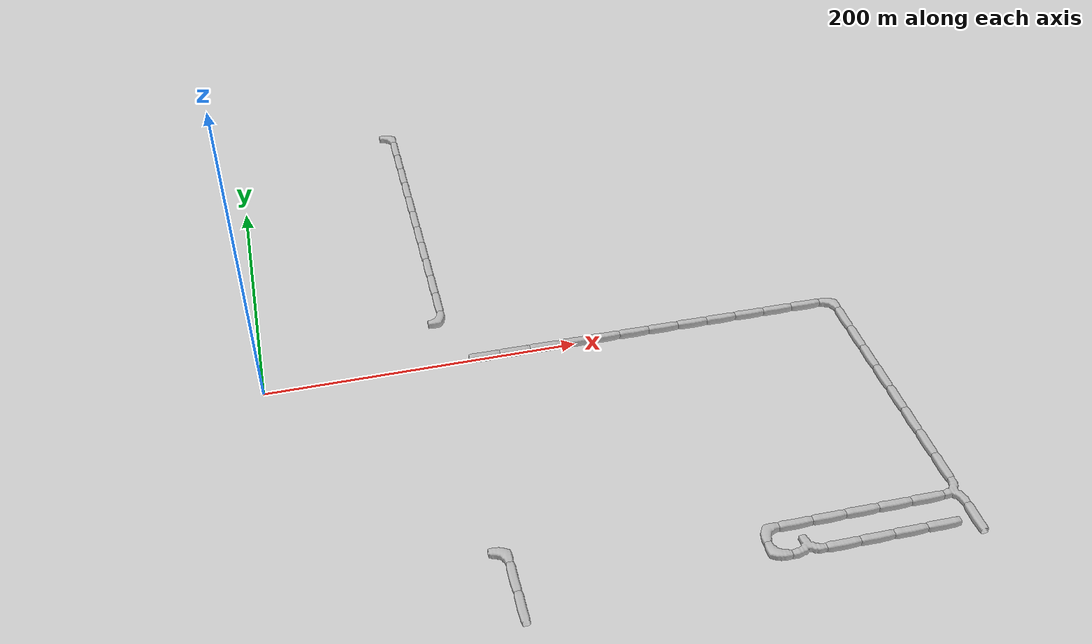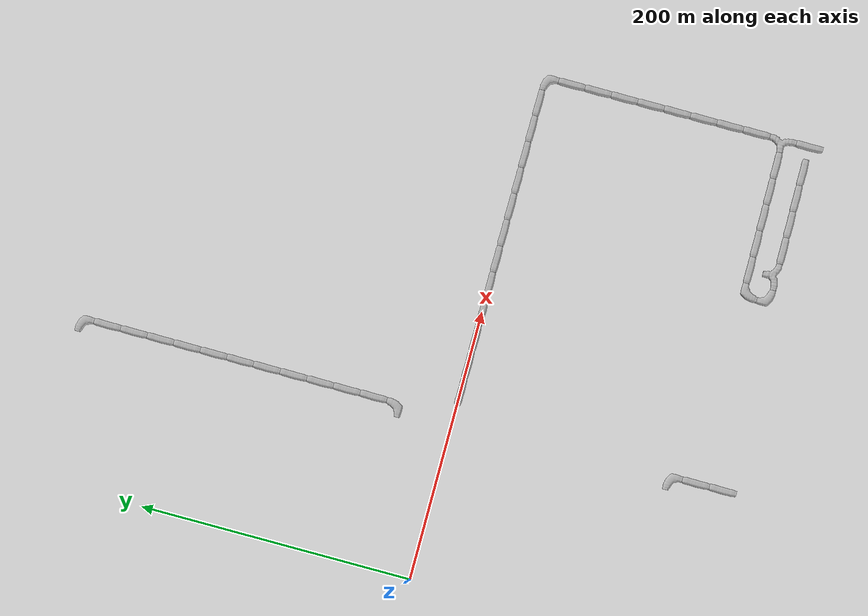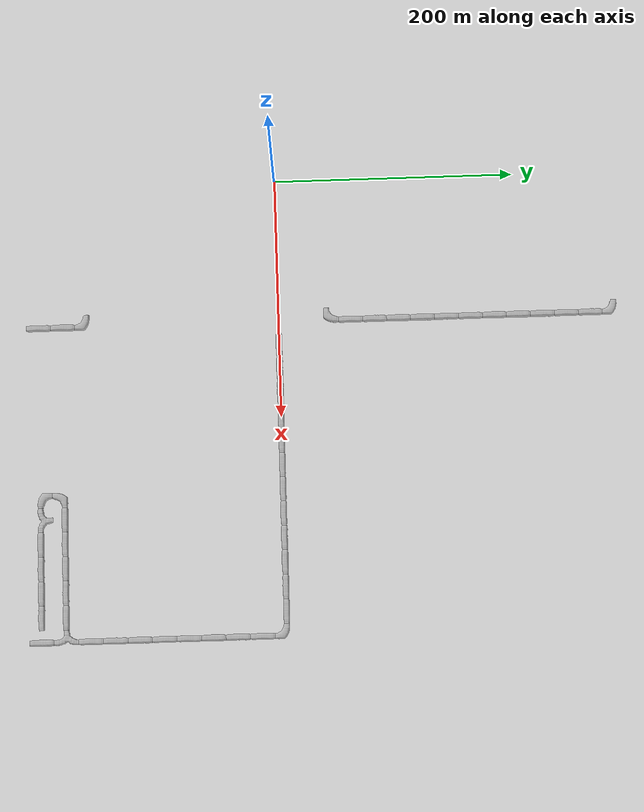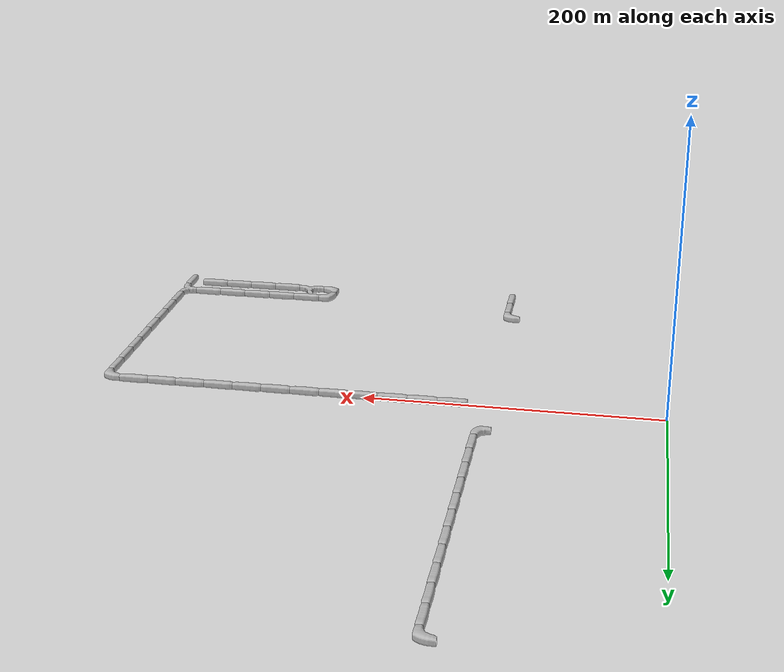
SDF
<sdf version="1.6">
 <world name="cave_8000_64">
  <include>
   <static>true</static>
   <name>cave_7_0</name>
   <pose>140 0 0 0 0 1.5707963267948966</pose>
   <uri>model://cave_straight_20m</uri>
  </include>
  <include>
   <static>true</static>
   <name>cave_8_0</name>
   <pose>160 0 0 0 0 1.5707963267948966</pose>
   <uri>model://cave_straight_20m</uri>
  </include>
  <include>
   <static>true</static>
   <name>cave_9_0</name>
   <pose>180 0 0 0 0 1.5707963267948966</pose>
   <uri>model://cave_straight_20m</uri>
  </include>
  <include>
   <static>true</static>
   <name>cave_10_0</name>
   <pose>200 0 0 0 0 1.5707963267948966</pose>
   <uri>model://cave_straight_20m</uri>
  </include>
  <include>
   <static>true</static>
   <name>cave_11_0</name>
   <pose>220 0 0 0 0 1.5707963267948966</pose>
   <uri>model://cave_straight_20m</uri>
  </include>
  <include>
   <static>true</static>
   <name>cave_12_0</name>
   <pose>240 0 0 0 0 1.5707963267948966</pose>
   <uri>model://cave_straight_20m</uri>
  </include>
  <include>
   <static>true</static>
   <name>cave_13_0</name>
   <pose>260 0 0 0 0 1.5707963267948966</pose>
   <uri>model://cave_straight_20m</uri>
  </include>
  <include>
   <static>true</static>
   <name>cave_14_0</name>
   <pose>280 0 0 0 0 1.5707963267948966</pose>
   <uri>model://cave_straight_20m</uri>
  </include>
  <include>
   <static>true</static>
   <name>cave_15_0</name>
   <pose>300 0 0 0 0 1.5707963267948966</pose>
   <uri>model://cave_straight_20m</uri>
  </include>
  <include>
   <static>true</static>
   <name>cave_16_0</name>
   <pose>320 0 0 0 0 1.5707963267948966</pose>
   <uri>model://cave_straight_20m</uri>
  </include>
  <include>
   <static>true</static>
   <name>cave_17_0</name>
   <pose>340 0 0 0 0 1.5707963267948966</pose>
   <uri>model://cave_straight_20m</uri>
  </include>
  <include>
   <static>true</static>
   <name>cave_18_0</name>
   <pose>360 0 0 0 0 1.5707963267948966</pose>
   <uri>model://cave_straight_20m</uri>
  </include>
  <include>
   <static>true</static>
   <name>cave_19_0</name>
   <pose>380 0 0 0 0 3.141592653589793</pose>
   <uri>model://cave_L_20m</uri>
  </include>
  <include>
   <static>true</static>
   <name>cave_19_-1</name>
   <pose>380 -20 0 0 0 0.0</pose>
   <uri>model://cave_straight_20m</uri>
  </include>
  <include>
   <static>true</static>
   <name>cave_19_-2</name>
   <pose>380 -40 0 0 0 0.0</pose>
   <uri>model://cave_straight_20m</uri>
  </include>
  <include>
   <static>true</static>
   <name>cave_19_-3</name>
   <pose>380 -60 0 0 0 0.0</pose>
   <uri>model://cave_straight_20m</uri>
  </include>
  <include>
   <static>true</static>
   <name>cave_19_-4</name>
   <pose>380 -80 0 0 0 0.0</pose>
   <uri>model://cave_straight_20m</uri>
  </include>
  <include>
   <static>true</static>
   <name>cave_19_-5</name>
   <pose>380 -100 0 0 0 0.0</pose>
   <uri>model://cave_straight_20m</uri>
  </include>
  <include>
   <static>true</static>
   <name>cave_19_-6</name>
   <pose>380 -120 0 0 0 0.0</pose>
   <uri>model://cave_straight_20m</uri>
  </include>
  <include>
   <static>true</static>
   <name>cave_19_-7</name>
   <pose>380 -140 0 0 0 0.0</pose>
   <uri>model://cave_straight_20m</uri>
  </include>
  <include>
   <static>true</static>
   <name>cave_19_-8</name>
   <pose>380 -160 0 0 0 0.0</pose>
   <uri>model://cave_straight_20m</uri>
  </include>
  <include>
   <static>true</static>
   <name>cave_19_-9</name>
   <pose>380 -180 0 0 0 1.5707963267948966</pose>
   <uri>model://cave_3way_20m</uri>
  </include>
  <include>
   <static>true</static>
   <name>cave_19_-10</name>
   <pose>380 -200 0 0 0 0.0</pose>
   <uri>model://cave_straight_20m</uri>
  </include>
  <include>
   <static>true</static>
   <name>cave_6_-10</name>
   <pose>120 -200 0 0 0 0.0</pose>
   <uri>model://cave_straight_20m</uri>
  </include>
  <include>
   <static>true</static>
   <name>cave_6_-9</name>
   <pose>120 -180 0 0 0 0.0</pose>
   <uri>model://cave_straight_20m</uri>
  </include>
  <include>
   <static>true</static>
   <name>cave_6_-8</name>
   <pose>120 -160 0 0 0 3.141592653589793</pose>
   <uri>model://cave_L_20m</uri>
  </include>
  <include>
   <static>true</static>
   <name>cave_18_-9</name>
   <pose>360 -180 0 0 0 1.5707963267948966</pose>
   <uri>model://cave_straight_20m</uri>
  </include>
  <include>
   <static>true</static>
   <name>cave_17_-9</name>
   <pose>340 -180 0 0 0 1.5707963267948966</pose>
   <uri>model://cave_straight_20m</uri>
  </include>
  <include>
   <static>true</static>
   <name>cave_16_-9</name>
   <pose>320 -180 0 0 0 1.5707963267948966</pose>
   <uri>model://cave_straight_20m</uri>
  </include>
  <include>
   <static>true</static>
   <name>cave_15_-9</name>
   <pose>300 -180 0 0 0 1.5707963267948966</pose>
   <uri>model://cave_straight_20m</uri>
  </include>
  <include>
   <static>true</static>
   <name>cave_14_-9</name>
   <pose>280 -180 0 0 0 1.5707963267948966</pose>
   <uri>model://cave_straight_20m</uri>
  </include>
  <include>
   <static>true</static>
   <name>cave_13_-9</name>
   <pose>260 -180 0 0 0 -1.5707963267948966</pose>
   <uri>model://cave_L_20m</uri>
  </include>
  <include>
   <static>true</static>
   <name>cave_13_-10</name>
   <pose>260 -200 0 0 0 0.0</pose>
   <uri>model://cave_L_20m</uri>
  </include>
  <include>
   <static>true</static>
   <name>cave_14_-10</name>
   <pose>280 -200 0 0 0 0.0</pose>
   <uri>model://cave_3way_20m</uri>
  </include>
  <include>
   <static>true</static>
   <name>cave_15_-10</name>
   <pose>300 -200 0 0 0 1.5707963267948966</pose>
   <uri>model://cave_straight_20m</uri>
  </include>
  <include>
   <static>true</static>
   <name>cave_16_-10</name>
   <pose>320 -200 0 0 0 1.5707963267948966</pose>
   <uri>model://cave_straight_20m</uri>
  </include>
  <include>
   <static>true</static>
   <name>cave_17_-10</name>
   <pose>340 -200 0 0 0 1.5707963267948966</pose>
   <uri>model://cave_straight_20m</uri>
  </include>
  <include>
   <static>true</static>
   <name>cave_18_-10</name>
   <pose>360 -200 0 0 0 1.5707963267948966</pose>
   <uri>model://cave_straight_20m</uri>
  </include>
  <include>
   <static>true</static>
   <name>cave_6_14</name>
   <pose>120 280 0 0 0 3.141592653589793</pose>
   <uri>model://cave_L_20m</uri>
  </include>
  <include>
   <static>true</static>
   <name>cave_6_13</name>
   <pose>120 260 0 0 0 0.0</pose>
   <uri>model://cave_straight_20m</uri>
  </include>
  <include>
   <static>true</static>
   <name>cave_6_12</name>
   <pose>120 240 0 0 0 0.0</pose>
   <uri>model://cave_straight_20m</uri>
  </include>
  <include>
   <static>true</static>
   <name>cave_6_11</name>
   <pose>120 220 0 0 0 0.0</pose>
   <uri>model://cave_straight_20m</uri>
  </include>
  <include>
   <static>true</static>
   <name>cave_6_10</name>
   <pose>120 200 0 0 0 0.0</pose>
   <uri>model://cave_straight_20m</uri>
  </include>
  <include>
   <static>true</static>
   <name>cave_6_9</name>
   <pose>120 180 0 0 0 0.0</pose>
   <uri>model://cave_straight_20m</uri>
  </include>
  <include>
   <static>true</static>
   <name>cave_6_8</name>
   <pose>120 160 0 0 0 0.0</pose>
   <uri>model://cave_straight_20m</uri>
  </include>
  <include>
   <static>true</static>
   <name>cave_6_7</name>
   <pose>120 140 0 0 0 0.0</pose>
   <uri>model://cave_straight_20m</uri>
  </include>
  <include>
   <static>true</static>
   <name>cave_6_6</name>
   <pose>120 120 0 0 0 0.0</pose>
   <uri>model://cave_straight_20m</uri>
  </include>
  <include>
   <static>true</static>
   <name>cave_6_5</name>
   <pose>120 100 0 0 0 0.0</pose>
   <uri>model://cave_straight_20m</uri>
  </include>
  <include>
   <static>true</static>
   <name>cave_6_4</name>
   <pose>120 80 0 0 0 0.0</pose>
   <uri>model://cave_straight_20m</uri>
  </include>
  <include>
   <static>true</static>
   <name>cave_6_3</name>
   <pose>120 60 0 0 0 0.0</pose>
   <uri>model://cave_straight_20m</uri>
  </include>
  <include>
   <static>true</static>
   <name>cave_6_2</name>
   <pose>120 40 0 0 0 1.5707963267948966</pose>
   <uri>model://cave_L_20m</uri>
  </include>
 </world>
</sdf>
